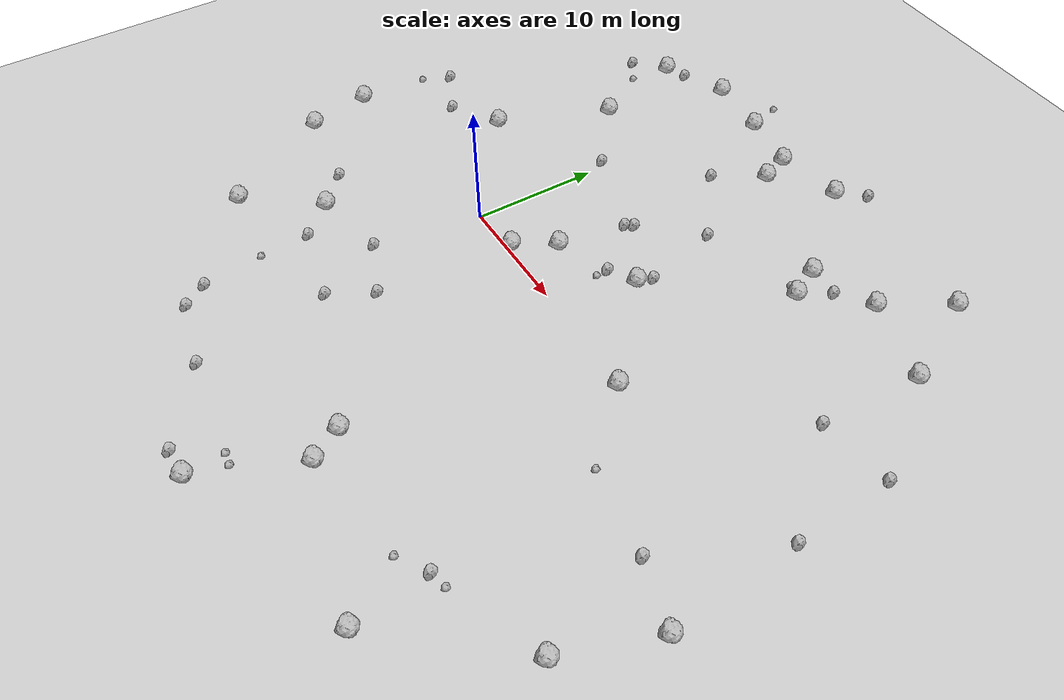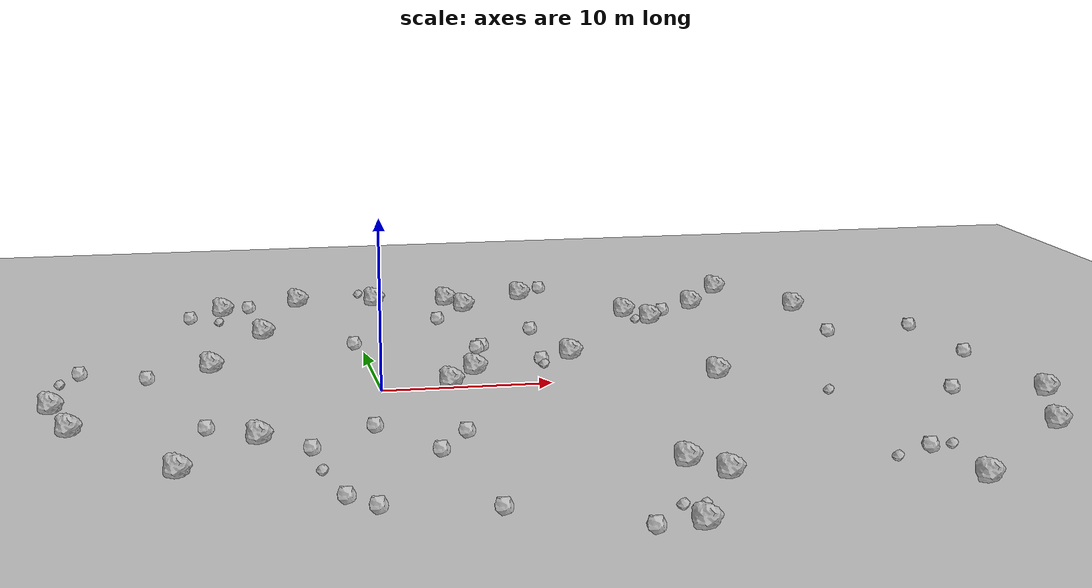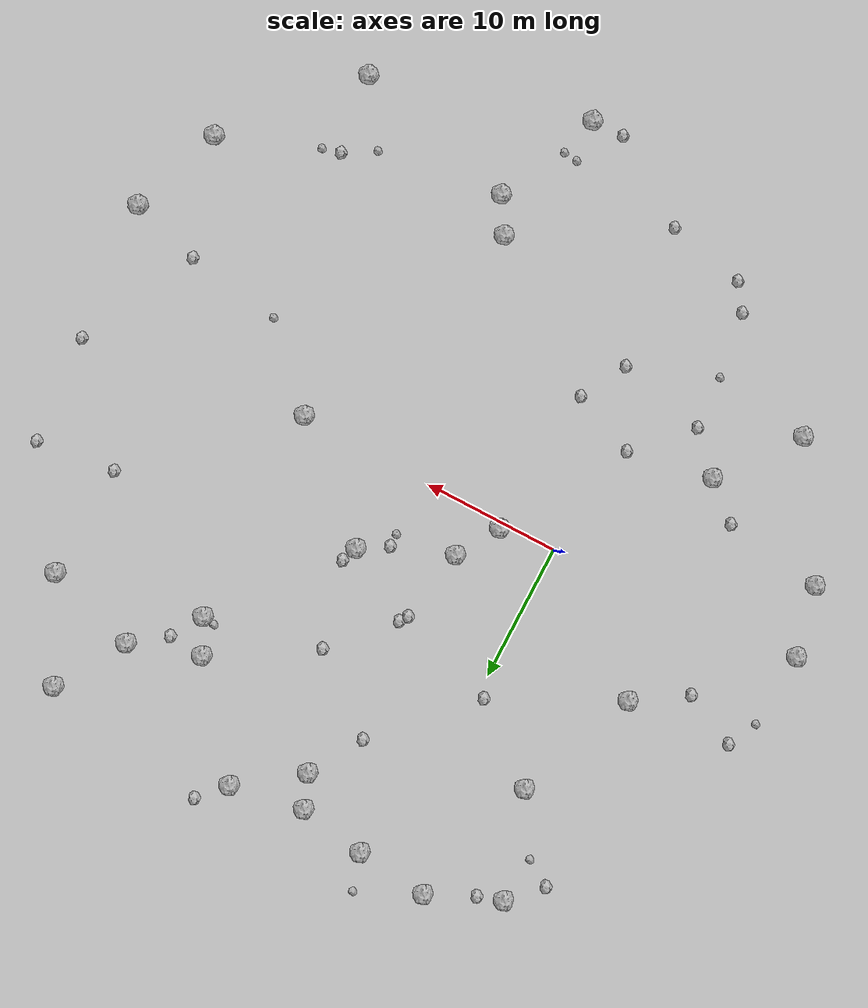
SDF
<sdf version="1.6">
 <world name="default">
  <include><uri>model://custom_ground</uri></include>
  <include><uri>model://sun</uri></include>
  <model name="rock1_0_0">
   <include><uri>model://rock1</uri><pose>-8.113621575554863 23.394278722028055 0.5 0 0 0</pose></include>
  </model>
  <model name="rock1_0_1">
   <include><uri>model://rock1</uri><pose>8.170621577222548 21.838554088305997 0.5 0 0 0</pose></include>
  </model>
  <model name="rock1_0_2">
   <include><uri>model://rock1</uri><pose>4.151932044873426 0.3960741397759868 0.5 0 0 0</pose></include>
  </model>
  <model name="rock1_0_3">
   <include><uri>model://rock1</uri><pose>12.655860009057854 25.158782949687037 0.5 0 0 0</pose></include>
  </model>
  <model name="rock1_0_4">
   <include><uri>model://rock1</uri><pose>6.03878217224495 3.490037230891815 0.5 0 0 0</pose></include>
  </model>
  <model name="rock1_0_5">
   <include><uri>model://rock1</uri><pose>-2.9020491361308345 25.608448205594414 0.5 0 0 0</pose></include>
  </model>
  <model name="rock1_0_6">
   <include><uri>model://rock1</uri><pose>-17.382112744841198 -6.309102369574308 0.5 0 0 0</pose></include>
  </model>
  <model name="rock1_0_7">
   <include><uri>model://rock1</uri><pose>34.88327546623432 -14.919477226378056 0.5 0 0 0</pose></include>
  </model>
  <model name="rock1_0_8">
   <include><uri>model://rock1</uri><pose>-18.513975356621305 -1.2395018717202788 0.5 0 0 0</pose></include>
  </model>
  <model name="rock1_0_9">
   <include><uri>model://rock1</uri><pose>30.43169063932269 17.603657868843833 0.5 0 0 0</pose></include>
  </model>
  <model name="rock1_0_10">
   <include><uri>model://rock1</uri><pose>37.36814201751751 -8.064247538010921 0.5 0 0 0</pose></include>
  </model>
  <model name="rock1_0_11">
   <include><uri>model://rock1</uri><pose>12.467881877367155 6.328451548001958 0.5 0 0 0</pose></include>
  </model>
  <model name="rock1_0_12">
   <include><uri>model://rock1</uri><pose>27.167786953125017 -23.782470771787025 0.5 0 0 0</pose></include>
  </model>
  <model name="rock1_0_13">
   <include><uri>model://rock1</uri><pose>23.72057220000704 19.685385526438232 0.5 0 0 0</pose></include>
  </model>
  <model name="rock1_0_14">
   <include><uri>model://rock1</uri><pose>13.41068404857593 -18.11974306871952 0.5 0 0 0</pose></include>
  </model>
  <model name="rock1_0_15">
   <include><uri>model://rock1</uri><pose>11.598444644769348 -28.234073335678257 0.5 0 0 0</pose></include>
  </model>
  <model name="rock1_0_16">
   <include><uri>model://rock1</uri><pose>20.028925763567365 -0.28766204573359033 0.5 0 0 0</pose></include>
  </model>
  <model name="rock1_0_17">
   <include><uri>model://rock1</uri><pose>-7.5262230932543055 -9.688229872921731 0.5 0 0 0</pose></include>
  </model>
  <model name="rock1_0_18">
   <include><uri>model://rock1</uri><pose>-5.8303938596365725 15.795157689877435 0.5 0 0 0</pose></include>
  </model>
  <model name="rock1_0_19">
   <include><uri>model://rock1</uri><pose>14.92693023435136 -20.60237178385283 0.5 0 0 0</pose></include>
  </model>
  <model name="rock1_0_20">
   <include><uri>model://rock1</uri><pose>7.254850419774229 24.208140745122975 0.5 0 0 0</pose></include>
  </model>
  <model name="rock1_0_21">
   <include><uri>model://rock1</uri><pose>2.3517807959709742 25.062456712340122 0.5 0 0 0</pose></include>
  </model>
  <model name="rock1_0_22">
   <include><uri>model://rock1</uri><pose>18.57581250768903 18.01375497152923 0.5 0 0 0</pose></include>
  </model>
  <model name="rock1_0_23">
   <include><uri>model://rock1</uri><pose>19.78181938040872 15.536346639519174 0.5 0 0 0</pose></include>
  </model>
  <model name="rock1_0_24">
   <include><uri>model://rock1</uri><pose>26.822963347827333 24.72735839062694 0.5 0 0 0</pose></include>
  </model>
  <model name="rock1_0_25">
   <include><uri>model://rock1</uri><pose>-11.854358693284272 -15.243418099972384 0.5 0 0 0</pose></include>
  </model>
  <model name="rock1_0_26">
   <include><uri>model://rock1</uri><pose>-9.433497431250634 6.972676401577324 0.5 0 0 0</pose></include>
  </model>
  <model name="rock2_0_0">
   <include><uri>model://rock2</uri><pose>36.486302745914976 2.1278105815150568 0.3 0 0 0</pose></include>
  </model>
  <model name="rock2_0_1">
   <include><uri>model://rock2</uri><pose>-13.262142612720428 4.588430054776566 0.3 0 0 0</pose></include>
  </model>
  <model name="rock2_0_2">
   <include><uri>model://rock2</uri><pose>6.944692721285179 8.89854641479483 0.3 0 0 0</pose></include>
  </model>
  <model name="rock2_0_3">
   <include><uri>model://rock2</uri><pose>3.329625957298205 -10.499892410508075 0.3 0 0 0</pose></include>
  </model>
  <model name="rock2_0_4">
   <include><uri>model://rock2</uri><pose>-10.370954060598459 21.236491633820805 0.3 0 0 0</pose></include>
  </model>
  <model name="rock2_0_5">
   <include><uri>model://rock2</uri><pose>32.18341104990135 -6.529278568916968 0.3 0 0 0</pose></include>
  </model>
  <model name="rock2_0_6">
   <include><uri>model://rock2</uri><pose>30.096304006968126 9.390631935228242 0.3 0 0 0</pose></include>
  </model>
  <model name="rock2_0_7">
   <include><uri>model://rock2</uri><pose>5.7772489694288325 18.029050625975728 0.3 0 0 0</pose></include>
  </model>
  <model name="rock2_0_8">
   <include><uri>model://rock2</uri><pose>-17.158784385898528 6.452436599227589 0.3 0 0 0</pose></include>
  </model>
  <model name="rock2_0_9">
   <include><uri>model://rock2</uri><pose>-2.7720208552019834 -22.88396090557881 0.3 0 0 0</pose></include>
  </model>
  <model name="rock2_0_10">
   <include><uri>model://rock2</uri><pose>-1.3452286649411462 -8.546169244783705 0.3 0 0 0</pose></include>
  </model>
  <model name="rock2_0_11">
   <include><uri>model://rock2</uri><pose>12.886897026880291 7.529955069677598 0.3 0 0 0</pose></include>
  </model>
  <model name="rock2_0_12">
   <include><uri>model://rock2</uri><pose>21.156223713047346 17.86786463722695 0.3 0 0 0</pose></include>
  </model>
  <model name="rock2_0_13">
   <include><uri>model://rock2</uri><pose>-5.009487839796897 -12.34037680170044 0.3 0 0 0</pose></include>
  </model>
  <model name="rock2_0_14">
   <include><uri>model://rock2</uri><pose>-6.3724902205926615 24.067988189562676 0.3 0 0 0</pose></include>
  </model>
  <model name="rock2_0_15">
   <include><uri>model://rock2</uri><pose>14.383165169616802 27.14193629566958 0.3 0 0 0</pose></include>
  </model>
  <model name="rock2_0_16">
   <include><uri>model://rock2</uri><pose>-10.218093290649078 -7.365944694513892 0.3 0 0 0</pose></include>
  </model>
  <model name="rock2_0_17">
   <include><uri>model://rock2</uri><pose>7.366798545927061 9.491033632763163 0.3 0 0 0</pose></include>
  </model>
  <model name="rock2_0_18">
   <include><uri>model://rock2</uri><pose>2.9278966434568012 -24.176067671097034 0.3 0 0 0</pose></include>
  </model>
  <model name="rock2_0_19">
   <include><uri>model://rock2</uri><pose>-4.085323781867018 -21.021434438463846 0.3 0 0 0</pose></include>
  </model>
  <model name="rock2_0_20">
   <include><uri>model://rock2</uri><pose>11.24641449943206 13.69997030805763 0.3 0 0 0</pose></include>
  </model>
  <model name="rock2_0_21">
   <include><uri>model://rock2</uri><pose>9.184151799801267 -28.2983948916568 0.3 0 0 0</pose></include>
  </model>
  <model name="rock2_0_22">
   <include><uri>model://rock2</uri><pose>1.480074069893444 -13.854947539472004 0.3 0 0 0</pose></include>
  </model>
  <model name="rock2_0_23">
   <include><uri>model://rock2</uri><pose>35.91758491794675 10.053410522104187 0.3 0 0 0</pose></include>
  </model>
  <model name="rock2_0_24">
   <include><uri>model://rock2</uri><pose>-0.4315421882954702 11.553214470847841 0.3 0 0 0</pose></include>
  </model>
  <model name="rock2_0_25">
   <include><uri>model://rock2</uri><pose>10.353945557057113 5.1040643222266695 0.3 0 0 0</pose></include>
  </model>
  <model name="rock2_0_26">
   <include><uri>model://rock2</uri><pose>26.347607619157827 -17.996070530490613 0.3 0 0 0</pose></include>
  </model>
  <model name="rock3_0_0">
   <include><uri>model://rock3</uri><pose>-4.821225771748976 -16.266954410936165 0.2 0 0 0</pose></include>
  </model>
  <model name="rock3_0_1">
   <include><uri>model://rock3</uri><pose>-18.25570403524094 4.287841739272778 0.2 0 0 0</pose></include>
  </model>
  <model name="rock3_0_2">
   <include><uri>model://rock3</uri><pose>1.4768851693086447 27.769903317600615 0.2 0 0 0</pose></include>
  </model>
  <model name="rock3_0_3">
   <include><uri>model://rock3</uri><pose>27.67336977160361 -17.685836961579067 0.2 0 0 0</pose></include>
  </model>
  <model name="rock3_0_4">
   <include><uri>model://rock3</uri><pose>25.134711478775422 -5.431354655382076 0.2 0 0 0</pose></include>
  </model>
  <model name="rock3_0_5">
   <include><uri>model://rock3</uri><pose>-8.530635153215933 20.044411003013373 0.2 0 0 0</pose></include>
  </model>
  <model name="rock3_0_6">
   <include><uri>model://rock3</uri><pose>18.80278617222079 15.722303966188605 0.2 0 0 0</pose></include>
  </model>
  <model name="rock3_0_7">
   <include><uri>model://rock3</uri><pose>10.339659298561806 4.123885694631262 0.2 0 0 0</pose></include>
  </model>
  <model name="rock3_0_8">
   <include><uri>model://rock3</uri><pose>24.06818718118692 -19.36867989149944 0.2 0 0 0</pose></include>
  </model>
  <model name="rock3_0_9">
   <include><uri>model://rock3</uri><pose>11.247439407015747 -25.242831697874262 0.2 0 0 0</pose></include>
  </model>
  <model name="rock3_0_10">
   <include><uri>model://rock3</uri><pose>12.29210061206507 -25.384375698650764 0.2 0 0 0</pose></include>
  </model>
 </world>
</sdf>
